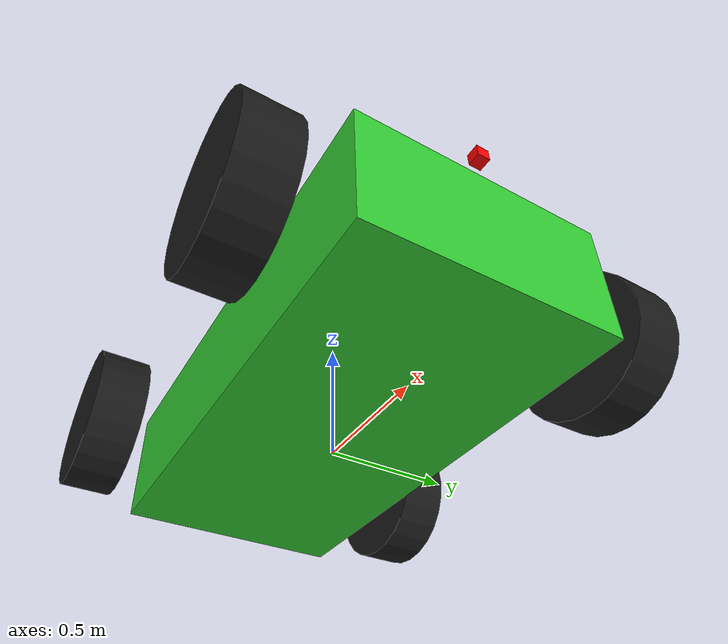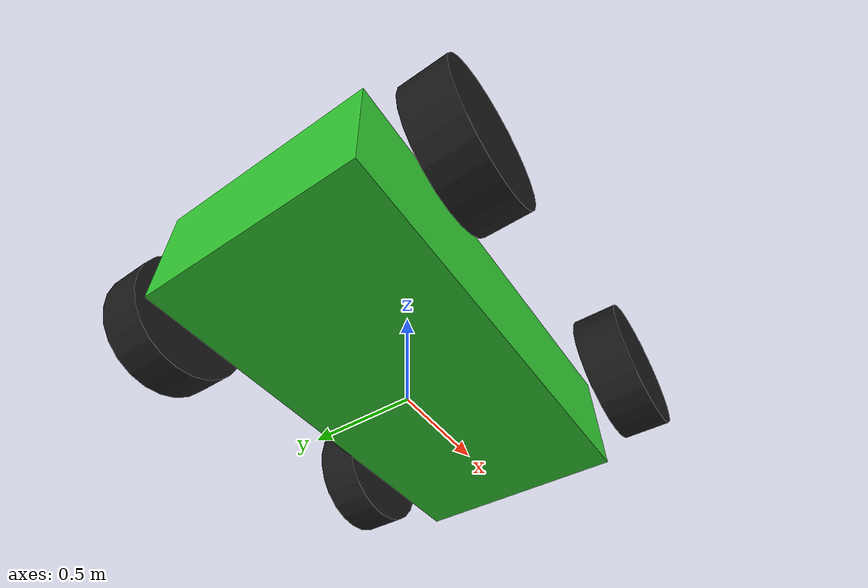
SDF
<?xml version="1.0"?>
<sdf version="1.9">
  <model name="rl_training_car">

    <!-- Base Link (chassis) -->
    <link name="base_link">
      <pose>0 0 0.3 0 0 0</pose>

      <inertial>
        <mass>10.0</mass>
        <inertia>
          <ixx>2.0</ixx>
          <iyy>2.0</iyy>
          <izz>2.0</izz>
        </inertia>
      </inertial>

      <collision name="collision">
        <geometry>
          <box>
            <size>2.0 1.0 0.5</size>
          </box>
        </geometry>
      </collision>

      <visual name="visual">
        <geometry>
          <box>
            <size>2.0 1.0 0.5</size>
          </box>
        </geometry>
        <material>
          <ambient>0.2 0.8 0.2 1.0</ambient>
          <diffuse>0.2 0.8 0.2 1.0</diffuse>
        </material>
      </visual>
    </link>

<!-- ... (skipping sensor/wheel links for brevity of edit tool, but only changing base_link here is safer if I use correct target) -->
<!-- Wait, replace_file_content requires me to match the block. I will target the Base Link block specifically. -->

    <!-- 2D LiDAR Sensor -->
    <link name="lidar_link">
      <pose relative_to="base_link">0 0 0.4 0 0 0</pose>

      <inertial>
        <mass>0.1</mass>
        <inertia>
          <ixx>0.001</ixx>
          <iyy>0.001</iyy>
          <izz>0.001</izz>
        </inertia>
      </inertial>

      <visual name="visual">
        <geometry>
          <cylinder>
            <radius>0.05</radius>
            <length>0.07</length>
          </cylinder>
        </geometry>
        <material>
          <ambient>0.0 0.0 0.0 1.0</ambient>
          <diffuse>0.0 0.0 0.0 1.0</diffuse>
        </material>
      </visual>

      <sensor name="lidar" type="gpu_lidar">
        <pose>0 0 0 0 0 0</pose>
        <topic>/scan</topic>
        <update_rate>10</update_rate>
        <lidar>
          <scan>
            <horizontal>
              <samples>360</samples>
              <resolution>1</resolution>
              <min_angle>-3.14159</min_angle>
              <max_angle>3.14159</max_angle>
            </horizontal>
          </scan>
          <range>
            <min>0.1</min>
            <max>10.0</max>
            <resolution>0.01</resolution>
          </range>
          <noise>
            <type>gaussian</type>
            <mean>0.0</mean>
            <stddev>0.01</stddev>
          </noise>
        </lidar>
        <always_on>1</always_on>
        <visualize>true</visualize>
      </sensor>
    </link>

    <joint name="lidar_joint" type="fixed">
      <parent>base_link</parent>
      <child>lidar_link</child>
    </joint>

    <!-- Front Camera (optional for future vision-based RL) -->
    <link name="camera_link">
      <pose relative_to="base_link">1.0 0 0.35 0 0 0</pose>

      <inertial>
        <mass>0.1</mass>
        <inertia>
          <ixx>0.001</ixx>
          <iyy>0.001</iyy>
          <izz>0.001</izz>
        </inertia>
      </inertial>

      <visual name="visual">
        <geometry>
          <box>
            <size>0.05 0.05 0.05</size>
          </box>
        </geometry>
        <material>
          <ambient>1.0 0.0 0.0 1.0</ambient>
          <diffuse>1.0 0.0 0.0 1.0</diffuse>
        </material>
      </visual>

      <sensor name="camera" type="camera">
        <camera>
          <horizontal_fov>1.047</horizontal_fov>
          <image>
            <width>320</width>
            <height>240</height>
          </image>
          <clip>
            <near>0.1</near>
            <far>100</far>
          </clip>
        </camera>
        <always_on>1</always_on>
        <update_rate>10</update_rate>
        <visualize>false</visualize>
        <topic>/camera/image_raw</topic>
      </sensor>
    </link>

    <joint name="camera_joint" type="fixed">
      <parent>base_link</parent>
      <child>camera_link</child>
    </joint>

    <!-- Wheels -->
    <link name="front_left_wheel">
      <pose relative_to="base_link">0.7 0.75 0 -1.5708 0 0</pose>
      <inertial>
        <mass>5.0</mass>
        <inertia>
          <ixx>0.1</ixx>
          <iyy>0.1</iyy>
          <izz>0.1</izz>
        </inertia>
      </inertial>
      <collision name="collision">
        <geometry>
          <cylinder>
            <radius>0.3</radius>
            <length>0.2</length>
          </cylinder>
        </geometry>
      </collision>
      <visual name="visual">
        <geometry>
          <cylinder>
            <radius>0.3</radius>
            <length>0.2</length>
          </cylinder>
        </geometry>
        <material>
          <ambient>0.1 0.1 0.1 1.0</ambient>
          <diffuse>0.1 0.1 0.1 1.0</diffuse>
        </material>
      </visual>
    </link>

    <joint name="front_left_wheel_joint" type="revolute">
      <parent>base_link</parent>
      <child>front_left_wheel</child>
      <axis>
        <xyz>0 1 0</xyz>
        <limit>
            <lower>-1.79769e+308</lower>
            <upper>1.79769e+308</upper>
        </limit>
      </axis>
    </joint>

    <link name="front_right_wheel">
      <pose relative_to="base_link">0.7 -0.75 0 -1.5708 0 0</pose>
      <inertial>
        <mass>5.0</mass>
        <inertia>
          <ixx>0.1</ixx>
          <iyy>0.1</iyy>
          <izz>0.1</izz>
        </inertia>
      </inertial>
      <collision name="collision">
        <geometry>
          <cylinder>
            <radius>0.3</radius>
            <length>0.2</length>
          </cylinder>
        </geometry>
      </collision>
      <visual name="visual">
        <geometry>
          <cylinder>
            <radius>0.3</radius>
            <length>0.2</length>
          </cylinder>
        </geometry>
        <material>
          <ambient>0.1 0.1 0.1 1.0</ambient>
          <diffuse>0.1 0.1 0.1 1.0</diffuse>
        </material>
      </visual>
    </link>

    <joint name="front_right_wheel_joint" type="revolute">
      <parent>base_link</parent>
      <child>front_right_wheel</child>
      <axis>
        <xyz>0 1 0</xyz>
        <limit>
            <lower>-1.79769e+308</lower>
            <upper>1.79769e+308</upper>
        </limit>
      </axis>
    </joint>

    <link name="rear_left_wheel">
      <pose relative_to="base_link">-0.7 0.75 0 -1.5708 0 0</pose>
      <inertial>
        <mass>5.0</mass>
        <inertia>
          <ixx>0.1</ixx>
          <iyy>0.1</iyy>
          <izz>0.1</izz>
        </inertia>
      </inertial>
      <collision name="collision">
        <geometry>
          <cylinder>
            <radius>0.3</radius>
            <length>0.2</length>
          </cylinder>
        </geometry>
      </collision>
      <visual name="visual">
        <geometry>
          <cylinder>
            <radius>0.3</radius>
            <length>0.2</length>
          </cylinder>
        </geometry>
        <material>
          <ambient>0.1 0.1 0.1 1.0</ambient>
          <diffuse>0.1 0.1 0.1 1.0</diffuse>
        </material>
      </visual>
    </link>

    <joint name="rear_left_wheel_joint" type="revolute">
      <parent>base_link</parent>
      <child>rear_left_wheel</child>
      <axis>
        <xyz>0 1 0</xyz>
        <limit>
            <lower>-1.79769e+308</lower>
            <upper>1.79769e+308</upper>
        </limit>
      </axis>
    </joint>

    <link name="rear_right_wheel">
      <pose relative_to="base_link">-0.7 -0.75 0 -1.5708 0 0</pose>
      <inertial>
        <mass>5.0</mass>
        <inertia>
          <ixx>0.1</ixx>
          <iyy>0.1</iyy>
          <izz>0.1</izz>
        </inertia>
      </inertial>
      <collision name="collision">
        <geometry>
          <cylinder>
            <radius>0.3</radius>
            <length>0.2</length>
          </cylinder>
        </geometry>
      </collision>
      <visual name="visual">
        <geometry>
          <cylinder>
            <radius>0.3</radius>
            <length>0.2</length>
          </cylinder>
        </geometry>
        <material>
          <ambient>0.1 0.1 0.1 1.0</ambient>
          <diffuse>0.1 0.1 0.1 1.0</diffuse>
        </material>
      </visual>
    </link>

    <joint name="rear_right_wheel_joint" type="revolute">
      <parent>base_link</parent>
      <child>rear_right_wheel</child>
      <axis>
        <xyz>0 1 0</xyz>
        <limit>
            <lower>-1.79769e+308</lower>
            <upper>1.79769e+308</upper>
        </limit>
      </axis>
    </joint>

    <!-- Differential Drive Plugin -->
    <plugin
      filename="gz-sim-diff-drive-system"
      name="gz::sim::systems::DiffDrive">
      <left_joint>front_left_wheel_joint</left_joint>
      <left_joint>rear_left_wheel_joint</left_joint>
      <right_joint>front_right_wheel_joint</right_joint>
      <right_joint>rear_right_wheel_joint</right_joint>
      <wheel_separation>1.2</wheel_separation>
      <wheel_radius>0.3</wheel_radius>
      <max_linear_acceleration>5.0</max_linear_acceleration>
      <min_linear_acceleration>-5.0</min_linear_acceleration>
      <max_angular_acceleration>5.0</max_angular_acceleration>
      <min_angular_acceleration>-5.0</min_angular_acceleration>
      <max_linear_velocity>5.0</max_linear_velocity>
      <min_linear_velocity>-5.0</min_linear_velocity>
      <max_angular_velocity>5.0</max_angular_velocity>
      <min_angular_velocity>-5.0</min_angular_velocity>
      <odom_publish_frequency>50</odom_publish_frequency>

      <!-- IMPORTANT: These topics are relative to /model/{name} -->
      <topic>cmd_vel</topic>
      <odom_topic>odometry</odom_topic>
      <tf_topic>tf</tf_topic>
      <frame_id>odom</frame_id>
      <child_frame_id>base_link</child_frame_id>
    </plugin>

  </model>
</sdf>
